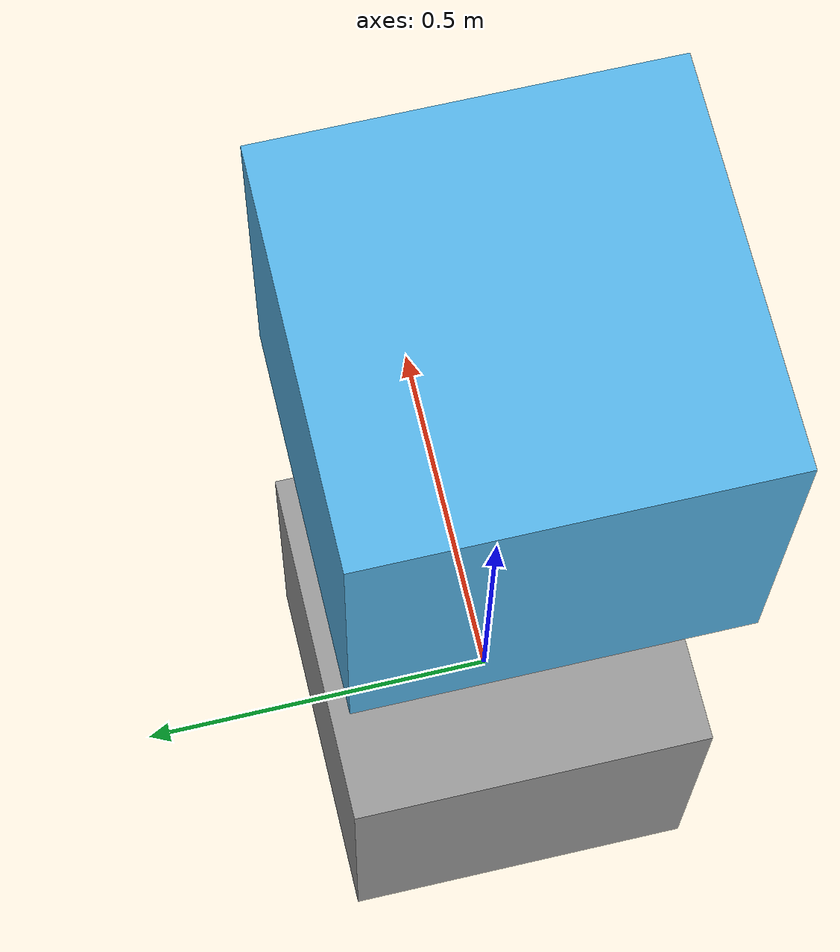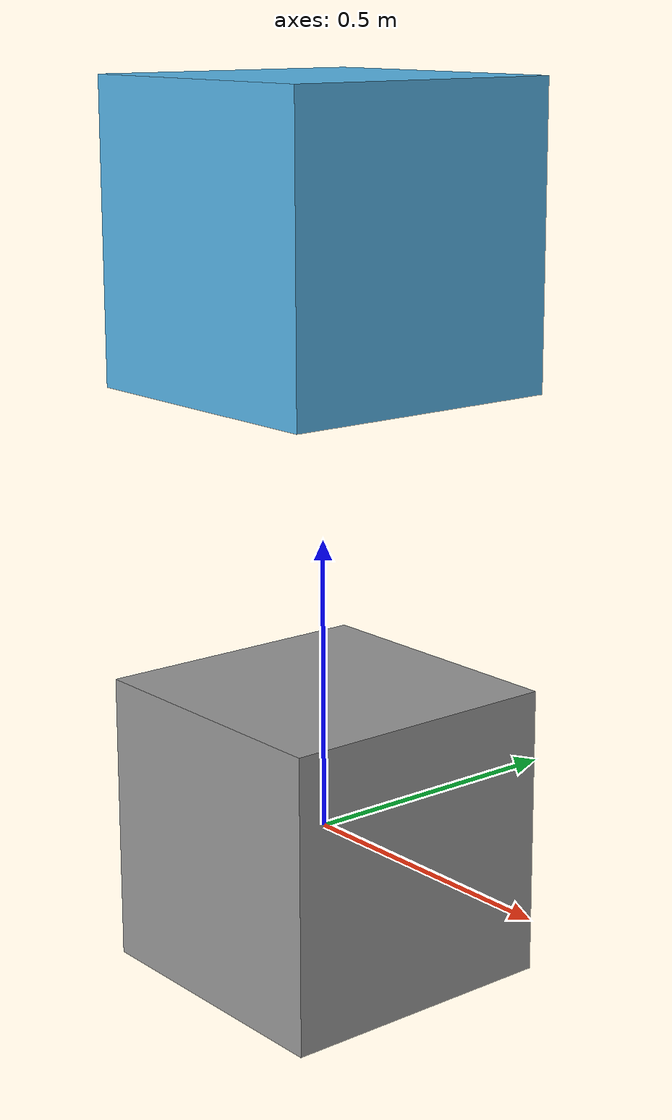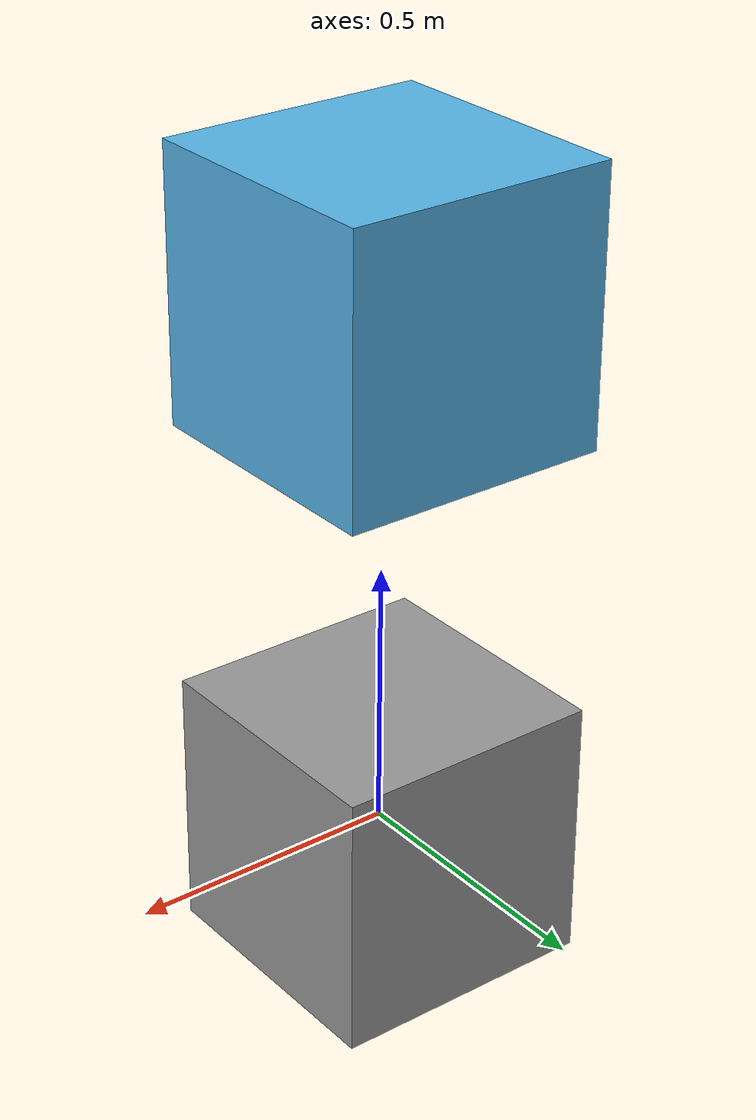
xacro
<?xml version="1.0"?>
<robot name="simple_robot" xmlns:xacro="http://www.ros.org/wiki/xacro">

    <xacro:property name="base_width" value="0.5"/>
    <xacro:property name="base_length" value="0.5"/>
    <xacro:property name="base_height" value="0.5"/>

    <link name="base_link">
        <visual>
            <geometry>
                <box size="0.5 0.5 0.5"/>
            </geometry>
            <material name="gray"/>

            <origin xyz="0.0 0.0 0.0" rpy="0.0 0.0 0.0"/>
        </visual>
    </link>
    <xacro:macro name="arm_link" params="prefix">
        <link name="${prefix}_arm_link">
            <visual>
            <geometry>
                <box size="${base_width} ${base_length} ${base_height}"/>
            </geometry>

            <origin xyz="0.0 0.0 0.0" rpy="0.0 0.0 0.0"/>
            </visual>
        </link>

    </xacro:macro>

    <xacro:arm_link prefix="right"/>

    <joint name="base_right_arm_joint" type="fixed">
        <parent link="base_link"/>
        <child link="right_arm_link"/>
        <origin xyz="0.0 0.0 1.0" rpy="0.0 0.0 0.0"/>

    </joint>

</robot>
